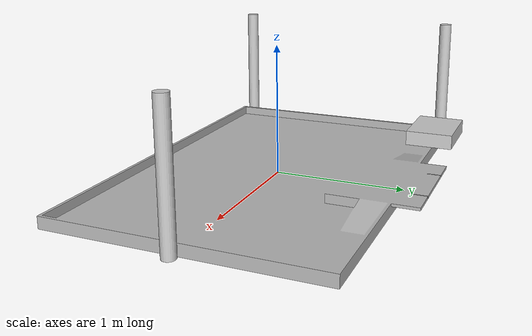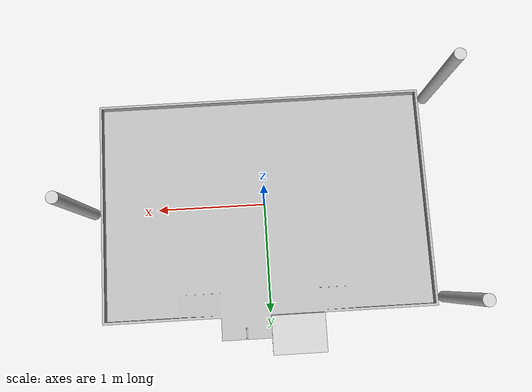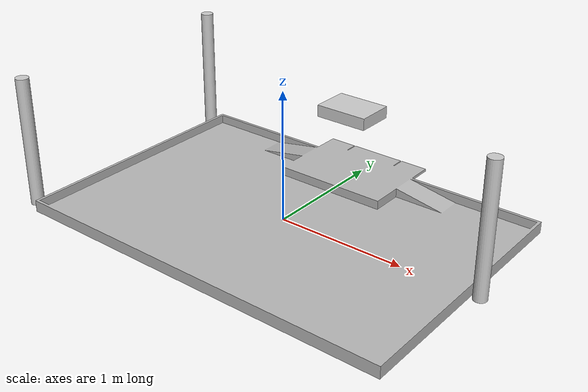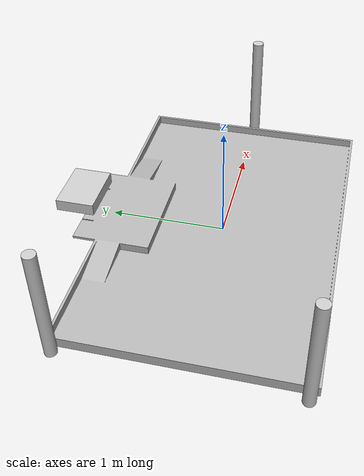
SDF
<sdf version="1.10">
 <world name="default">
  <gravity>0 0 -9.8000000000000007</gravity>
  <magnetic_field>6.0000000000000002e-06 2.3e-05 -4.1999999999999998e-05</magnetic_field>
  <atmosphere type="adiabatic"/>
  <physics type="ode">
   <max_step_size>0.004</max_step_size>
   <real_time_factor>1</real_time_factor>
   <real_time_update_rate>250</real_time_update_rate>
  </physics>
  <scene>
   <ambient>0.400000006 0.400000006 0.400000006 1</ambient>
   <background>0.699999988 0.699999988 0.699999988 1</background>
   <shadows>true</shadows>
  </scene>
  <audio><device>default</device></audio>
  <spherical_coordinates>
   <surface_model>EARTH_WGS84</surface_model>
   <latitude_deg>0</latitude_deg>
   <longitude_deg>0</longitude_deg>
   <elevation>0</elevation>
   <heading_deg>0</heading_deg>
  </spherical_coordinates>
  <plugin name="gz::sim::systems::Physics" filename="gz-sim-physics-system"/>
  <plugin name="gz::sim::systems::Sensors" filename="gz-sim-sensors-system">
   <render_engine>ogre2</render_engine>
  </plugin>
  <plugin name="gz::sim::systems::Imu" filename="gz-sim-imu-system"/>
  <plugin name="gz::sim::systems::UserCommands" filename="gz-sim-user-commands-system"/>
  <plugin name="gz::sim::systems::SceneBroadcaster" filename="gz-sim-scene-broadcaster-system"/>
  <plugin name="gz::sim::systems::MyPlugin" filename="libgz-match-plugin.so"/>
  <include><uri>model://Table2025</uri><name>Table_2024</name></include>
  <include><uri>model://poteau</uri><name>Poteau1</name><pose>+1.594 0 0 0 0 0</pose></include>
  <include><uri>model://poteau</uri><name>Poteau2</name><pose>-1.594 -0.95 0 0 0 0</pose></include>
  <include><uri>model://poteau</uri><name>Poteau3</name><pose>-1.594 0.95 0 0 0 0</pose></include>
  <include><uri>model://boxboxbox</uri><name>THE_box</name><pose>-0.225 1.161 0 0 0 0</pose></include>
  <light name="sun" type="directional">
   <pose>0 0 10 0 0 0</pose>
   <intensity>1</intensity>
   <direction>-0.5 0.10000000000000001 -0.90000000000000002</direction>
   <diffuse>0.800000012 0.800000012 0.800000012 1</diffuse>
   <specular>0.200000003 0.200000003 0.200000003 1</specular>
   <attenuation>
    <range>1000</range>
    <linear>0.01</linear>
    <constant>0.90000000000000002</constant>
    <quadratic>0.001</quadratic>
   </attenuation>
   <spot><inner_angle>0</inner_angle><outer_angle>0</outer_angle><falloff>0</falloff></spot>
  </light>
 </world>
</sdf>

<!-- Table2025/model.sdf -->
<sdf version='1.7'>
  <model name='Table_2024'>
   	<static>true</static>
    <plugin filename="gz-sim-label-system" name="gz::sim::systems::Label">
        <label>1</label>
    </plugin>
    <link name='link_0'>
			<gravity>0</gravity>
      <inertial>
        <inertia>
          <ixx>0.166667</ixx>
          <ixy>0</ixy>
          <ixz>0</ixz>
          <iyy>0.166667</iyy>
          <iyz>0</iyz>
          <izz>0.166667</izz>
        </inertia>
      </inertial>
      <pose>0 0 0 0 0 0</pose>
      <visual name='visual'>
        <pose>0 0 0 0 -0 0</pose>
        <geometry>
          <mesh>
            <uri>TableMainV3.dae</uri>
            <scale>1 1 1</scale>
          </mesh>
        </geometry>
        <transparency>0</transparency>
        <cast_shadows>1</cast_shadows>
      </visual>
      <collision name='collision'>
        <laser_retro>0</laser_retro>
        <max_contacts>10</max_contacts>
        <pose>0 0 0 0 -0 0</pose>
        <geometry>
          <mesh>
            <uri>TableMainV3.dae</uri>
            <scale>1 1 1</scale>
          </mesh>
        </geometry>
        <surface>
          <friction>
            <ode>
              <mu>1</mu>
              <mu2>1</mu2>
              <fdir1>0 0 0</fdir1>
              <slip1>0</slip1>
              <slip2>0</slip2>
            </ode>
            <torsional>
              <coefficient>1</coefficient>
              <patch_radius>0</patch_radius>
              <surface_radius>0</surface_radius>
              <use_patch_radius>1</use_patch_radius>
              <ode>
                <slip>0</slip>
              </ode>
            </torsional>
          </friction>

          <contact>
            <collide_without_contact>0</collide_without_contact>
            <collide_without_contact_bitmask>1</collide_without_contact_bitmask>
            <collide_bitmask>1</collide_bitmask>
            <ode>
              <soft_cfm>0</soft_cfm>
              <soft_erp>0.2</soft_erp>
              <kp>1e+13</kp>
              <kd>1</kd>
              <max_vel>0.01</max_vel>
              <min_depth>0.01</min_depth>
            </ode>
            <bullet>
              <split_impulse>1</split_impulse>
              <split_impulse_penetration_threshold>-0.01</split_impulse_penetration_threshold>
              <soft_cfm>0</soft_cfm>
              <soft_erp>0.2</soft_erp>
              <kp>1e+13</kp>
              <kd>1</kd>
            </bullet>
          </contact>
        </surface>
      </collision>
    </link>
    <pose>0 0 0 0 0 0</pose>

    <static>0</static>
    <allow_auto_disable>1</allow_auto_disable>
  </model>
</sdf>

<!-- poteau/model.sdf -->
<sdf version='1.7'>
  <model name='Poteau'>
   	<static>true</static>
    <allow_auto_disable>true</allow_auto_disable>
    <plugin filename="gz-sim-label-system" name="gz::sim::systems::Label">
        <label>2</label>
    </plugin>
    <link name='link_0'>
			<gravity>0</gravity>
      <inertial>
        <pose>0 0 0.02 0 0 0</pose>
        <mass>0.025</mass>
        <inertia>
          <ixx>2.5e-5</ixx>
          <ixy>0</ixy>
          <ixz>0</ixz>
          <iyy>2.5e-5</iyy>
          <iyz>0</iyz>
          <izz>8e-6</izz>
        </inertia>
      </inertial>
      <pose>0 0 0.5 0 0 0</pose>
      <visual name='visual'>
        <pose>0 0 0 0 -0 0</pose>
        <geometry>
          <cylinder>
            <radius>0.05</radius>
            <length>1.0</length>
          </cylinder>
        </geometry>
        <material>
          <ambient>0.8 0.8 0.8 1</ambient>
          <diffuse>0.8 0.8 0.8 1</diffuse>
          <specular>0.1 0.1 0.1 1</specular>
          <emissive>0 0 0 1</emissive>
        </material>
        <transparency>0</transparency>
        <cast_shadows>1</cast_shadows>
      </visual>

      <collision name='collision'>
        <laser_retro>1</laser_retro>
        <max_contacts>5 </max_contacts>
        <pose>0 0 0.5 0 0 0</pose>
        <geometry>
          <cylinder>
            <radius>0.05</radius>
            <length>1.0</length>
          </cylinder>
        </geometry>
      </collision>
    </link>
    <pose>0 0 0 0 0 0</pose>

    <allow_auto_disable>1</allow_auto_disable>
  </model>
</sdf>

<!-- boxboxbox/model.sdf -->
<sdf version='1.7'>
  <model name='boxboxbox'>
   	<static>true</static>
    <allow_auto_disable>true</allow_auto_disable>
    <plugin filename="gz-sim-label-system" name="gz::sim::systems::Label">
        <label>3</label>
    </plugin>
    <link name='link_0'>
			<gravity>0</gravity>
      <inertial>
        <pose>0 0 0.02 0 0 0</pose>
        <mass>0.025</mass>
        <inertia>
          <ixx>2.5e-5</ixx>
          <ixy>0</ixy>
          <ixz>0</ixz>
          <iyy>2.5e-5</iyy>
          <iyz>0</iyz>
          <izz>8e-6</izz>
        </inertia>
      </inertial>
      <pose>0 0 0.40 0 0 0</pose>
      <visual name='visual'>
        <pose>0 0 0 0 -0 0</pose>
        <geometry>
          <box>
            <size>0.450 0.322 0.100</size>
          </box>
        </geometry>
        <material>
          <ambient>0.8 0.8 0.8 1</ambient>
          <diffuse>0.8 0.8 0.8 1</diffuse>
          <specular>0.1 0.1 0.1 1</specular>
          <emissive>0 0 0 1</emissive>
        </material>
        <transparency>0</transparency>
        <cast_shadows>1</cast_shadows>
      </visual>

      <collision name='collision'>
        <laser_retro>1.0</laser_retro>
        <max_contacts>5 </max_contacts>
        <pose>0 0 0 0 0 0</pose>
        <geometry>
          <box>
            <size>0.450 0.322 0.100</size>
          </box>
        </geometry>
      </collision>
    </link>
    <pose>0 0 0 0 0 0</pose>

    <allow_auto_disable>1</allow_auto_disable>
  </model>
</sdf>
